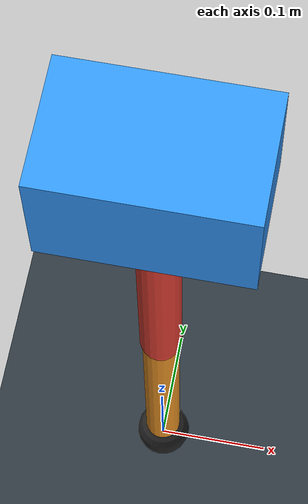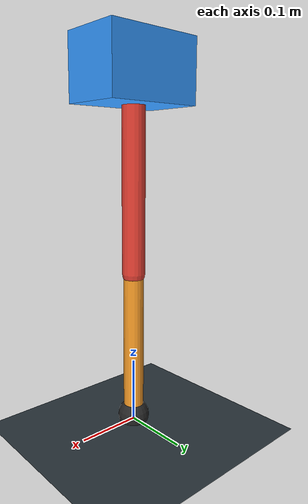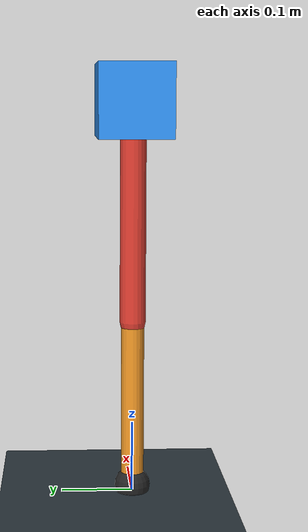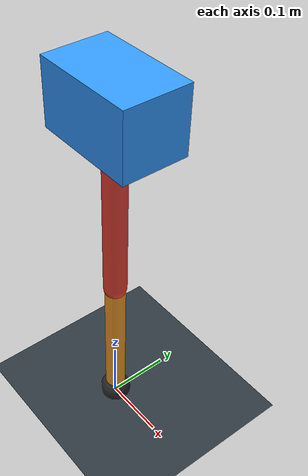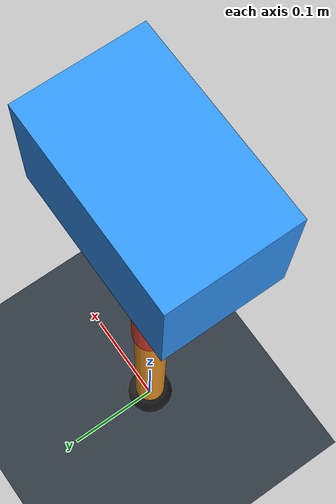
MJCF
<mujoco model="single_axis_two_bar">
  <compiler angle="radian" inertiafromgeom="true"/>
  <option timestep="0.001" integrator="implicitfast" gravity="0 0 -9.81"/>
  <default>
    <joint damping="0.08"/>
    <geom friction="1.2 0.01 0.0001" condim="3"/>
  </default>
  <worldbody>
    <geom name="floor" type="plane" size="5 5 0.1" rgba="0.18 0.22 0.25 1"/>
    <body name="carriage" pos="0 0 0.5507529488434657">
      <joint name="pole_slide" type="slide" axis="0 0 1"/>
      <geom name="payload" type="box" size="0.08 0.05 0.05" mass="3.5916393449616373" rgba="0.2 0.6 1 1"/>
      <body name="thigh" pos="0 0 0">
        <joint name="hip" type="hinge" axis="0 1 0"/>
        <geom name="thigh_link" type="capsule" fromto="0 0 0 0 0 -0.30581451103674007" size="0.018" mass="0.21789688009591138" rgba="0.9 0.25 0.2 1"/>
        <body name="shank" pos="0 0 -0.30581451103674007">
          <joint name="knee" type="hinge" axis="0 1 0"/>
          <geom name="shank_link" type="capsule" fromto="0 0 0 0 0 -0.23619883828642046" size="0.016" mass="0.16829479337135367" rgba="0.95 0.6 0.15 1"/>
          <geom name="foot" type="sphere" pos="0 0 -0.23619883828642046" size="0.025" mass="0.03" rgba="0.15 0.15 0.15 1"/>
          <site name="toe" pos="0 0 -0.23619883828642046" size="0.008"/>
        </body>
      </body>
    </body>
  </worldbody>
  <actuator>
    <motor name="hip_motor" joint="hip" ctrlrange="-44.084208427309505 44.084208427309505"/>
    <motor name="knee_motor" joint="knee" ctrlrange="-162.85966078155758 162.85966078155758"/>
  </actuator>
</mujoco>
